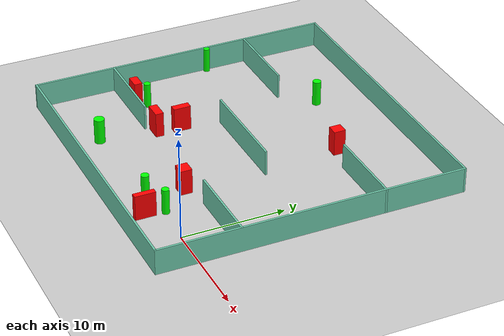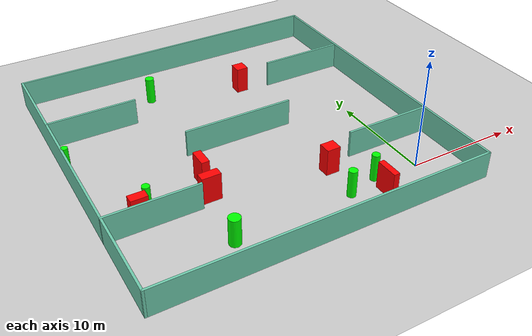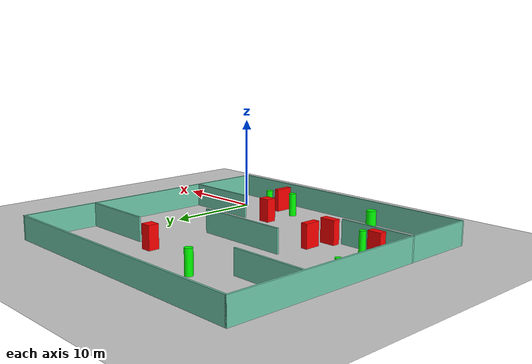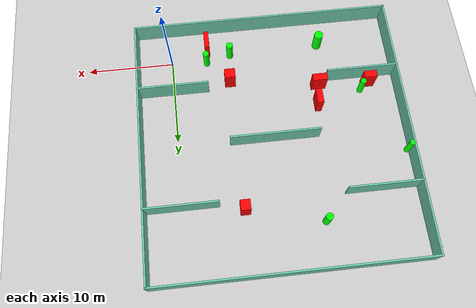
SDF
<sdf version="1.7">
 <world name="default">
  <light name="sun" type="directional">
   <pose>0 0 10 0 -0 0</pose>
   <diffuse>0.8 0.8 0.8 1</diffuse>
   <specular>0.2 0.2 0.2 1</specular>
   <attenuation>
    <range>1000</range>
    <constant>0.9</constant>
    <linear>0.01</linear>
    <quadratic>0.001</quadratic>
   </attenuation>
   <direction>-0.5 0.1 -0.9</direction>
   <spot><inner_angle>0</inner_angle><outer_angle>0</outer_angle><falloff>0</falloff></spot>
  </light>
  <model name="ground_plane">
   <static>1</static>
   <link name="link">
    <collision name="collision">
     <geometry><plane><normal>0 0 1</normal><size>100 100</size></plane></geometry>
     <surface>
      <contact><collide_bitmask>65535</collide_bitmask></contact>
      <friction><ode><mu>100</mu><mu2>50</mu2></ode></friction>
     </surface>
    </collision>
    <visual name="visual">
     <cast_shadows>0</cast_shadows>
     <geometry><plane><normal>0 0 1</normal><size>100 100</size></plane></geometry>
     <material>
      <script><uri>file://media/materials/scripts/gazebo.material</uri><name>Gazebo/Grey</name></script>
     </material>
    </visual>
   </link>
  </model>
  <gravity>0 0 -9.8</gravity>
  <magnetic_field>6e-06 2.3e-05 -4.2e-05</magnetic_field>
  <atmosphere type="adiabatic"/>
  <physics type="ode">
   <max_step_size>0.001</max_step_size>
   <real_time_factor>1</real_time_factor>
   <real_time_update_rate>1000</real_time_update_rate>
  </physics>
  <scene><ambient>0.4 0.4 0.4 1</ambient><background>0.7 0.7 0.7 1</background><shadows>1</shadows></scene>
  <spherical_coordinates>
   <surface_model>EARTH_WGS84</surface_model>
   <latitude_deg>0</latitude_deg>
   <longitude_deg>0</longitude_deg>
   <elevation>0</elevation>
   <heading_deg>0</heading_deg>
  </spherical_coordinates>
  <model name="my_base_walls">
   <link name="Wall_10">
    <collision name="Wall_10_Collision">
     <geometry><box><size>8.2 0.2 2.5</size></box></geometry>
     <pose>0 0 1.25 0 -0 0</pose>
    </collision>
    <visual name="Wall_10_Visual">
     <pose>0 0 1.25 0 -0 0</pose>
     <geometry><box><size>8.2 0.2 2.5</size></box></geometry>
     <material>
      <script><uri>file://media/materials/scripts/gazebo.material</uri><name>Gazebo/Grey</name></script>
      <ambient>0.435294 0.796078 0.67451 1</ambient>
     </material>
     <meta><layer>0</layer></meta>
    </visual>
    <pose>-11 -7 0 0 -0 0</pose>
   </link>
   <link name="Wall_12">
    <collision name="Wall_12_Collision">
     <geometry><box><size>8.2 0.2 2.5</size></box></geometry>
     <pose>0 0 1.25 0 -0 0</pose>
    </collision>
    <visual name="Wall_12_Visual">
     <pose>0 0 1.25 0 -0 0</pose>
     <geometry><box><size>8.2 0.2 2.5</size></box></geometry>
     <material>
      <script><uri>file://media/materials/scripts/gazebo.material</uri><name>Gazebo/Grey</name></script>
      <ambient>0.435294 0.796078 0.67451 1</ambient>
     </material>
     <meta><layer>0</layer></meta>
    </visual>
    <pose>-11 7 0 0 -0 0</pose>
   </link>
   <link name="Wall_14">
    <collision name="Wall_14_Collision">
     <geometry><box><size>8.2 0.2 2.5</size></box></geometry>
     <pose>0 0 1.25 0 -0 0</pose>
    </collision>
    <visual name="Wall_14_Visual">
     <pose>0 0 1.25 0 -0 0</pose>
     <geometry><box><size>8.2 0.2 2.5</size></box></geometry>
     <material>
      <script><uri>file://media/materials/scripts/gazebo.material</uri><name>Gazebo/Grey</name></script>
      <ambient>0.435294 0.796078 0.67451 1</ambient>
     </material>
     <meta><layer>0</layer></meta>
    </visual>
    <pose>11 7 0 0 -0 3.14159</pose>
   </link>
   <link name="Wall_16">
    <collision name="Wall_16_Collision">
     <geometry><box><size>10.2 0.2 2.5</size></box></geometry>
     <pose>0 0 1.25 0 -0 0</pose>
    </collision>
    <visual name="Wall_16_Visual">
     <pose>0 0 1.25 0 -0 0</pose>
     <geometry><box><size>10.2 0.2 2.5</size></box></geometry>
     <material>
      <script><uri>file://media/materials/scripts/gazebo.material</uri><name>Gazebo/Grey</name></script>
      <ambient>0.435294 0.796078 0.67451 1</ambient>
     </material>
     <meta><layer>0</layer></meta>
    </visual>
    <pose>0 0 0 0 -0 3.14159</pose>
   </link>
   <link name="Wall_2">
    <collision name="Wall_2_Collision">
     <geometry><box><size>30.2 0.2 2.5</size></box></geometry>
     <pose>0 0 1.25 0 -0 0</pose>
    </collision>
    <visual name="Wall_2_Visual">
     <pose>0 0 1.25 0 -0 0</pose>
     <geometry><box><size>30.2 0.2 2.5</size></box></geometry>
     <material>
      <script><uri>file://media/materials/scripts/gazebo.material</uri><name>Gazebo/Grey</name></script>
      <ambient>0.435294 0.796078 0.67451 1</ambient>
     </material>
     <meta><layer>0</layer></meta>
    </visual>
    <pose>0 -15 0 0 -0 3.14159</pose>
   </link>
   <link name="Wall_3">
    <collision name="Wall_3_Collision">
     <geometry><box><size>30.2 0.2 2.5</size></box></geometry>
     <pose>0 0 1.25 0 -0 0</pose>
    </collision>
    <visual name="Wall_3_Visual">
     <pose>0 0 1.25 0 -0 0</pose>
     <geometry><box><size>30.2 0.2 2.5</size></box></geometry>
     <material>
      <script><uri>file://media/materials/scripts/gazebo.material</uri><name>Gazebo/Grey</name></script>
      <ambient>0.435294 0.796078 0.67451 1</ambient>
     </material>
     <meta><layer>0</layer></meta>
    </visual>
    <pose>-15 0 0 0 -0 1.5708</pose>
   </link>
   <link name="Wall_4">
    <collision name="Wall_4_Collision">
     <geometry><box><size>30.2 0.2 2.5</size></box></geometry>
     <pose>0 0 1.25 0 -0 0</pose>
    </collision>
    <visual name="Wall_4_Visual">
     <pose>0 0 1.25 0 -0 0</pose>
     <geometry><box><size>30.2 0.2 2.5</size></box></geometry>
     <material>
      <script><uri>file://media/materials/scripts/gazebo.material</uri><name>Gazebo/Grey</name></script>
      <ambient>0.435294 0.796078 0.67451 1</ambient>
     </material>
     <meta><layer>0</layer></meta>
    </visual>
    <pose>0 15 0 0 -0 0</pose>
   </link>
   <link name="Wall_6">
    <collision name="Wall_6_Collision">
     <geometry><box><size>30.2 0.2 2.5</size></box></geometry>
     <pose>0 0 1.25 0 -0 0</pose>
    </collision>
    <visual name="Wall_6_Visual">
     <pose>0 0 1.25 0 -0 0</pose>
     <geometry><box><size>30.2 0.2 2.5</size></box></geometry>
     <material>
      <script><uri>file://media/materials/scripts/gazebo.material</uri><name>Gazebo/Grey</name></script>
      <ambient>0.435294 0.796078 0.67451 1</ambient>
     </material>
     <meta><layer>0</layer></meta>
    </visual>
    <pose>15 0 0 0 -0 1.5708</pose>
   </link>
   <link name="Wall_8">
    <collision name="Wall_8_Collision">
     <geometry><box><size>8.2 0.2 2.5</size></box></geometry>
     <pose>0 0 1.25 0 -0 0</pose>
    </collision>
    <visual name="Wall_8_Visual">
     <pose>0 0 1.25 0 -0 0</pose>
     <geometry><box><size>8.2 0.2 2.5</size></box></geometry>
     <material>
      <script><uri>file://media/materials/scripts/gazebo.material</uri><name>Gazebo/Grey</name></script>
      <ambient>0.435294 0.796078 0.67451 1</ambient>
     </material>
     <meta><layer>0</layer></meta>
    </visual>
    <pose>11 -7 0 0 -0 3.14159</pose>
   </link>
   <static>1</static>
   <pose>-11 11 0 0 -0 0</pose>
  </model>
  <model name="cylinder1">
   <static>1</static>
   <link name="link">
    <inertial>
     <mass>1</mass>
     <inertia><ixx>0.5</ixx><ixy>0</ixy><ixz>0</ixz><iyy>0.5</iyy><iyz>0</iyz><izz>1</izz></inertia>
    </inertial>
    <collision name="collision">
     <geometry><cylinder><radius>0.3358565357784995</radius><length>2.5</length></cylinder></geometry>
    </collision>
    <visual name="visual">
     <geometry><cylinder><radius>0.3358565357784995</radius><length>2.5</length></cylinder></geometry>
     <material>
      <ambient>0 1 0 1</ambient>
      <diffuse>0 1 0 1</diffuse>
      <specular>0.1 0.1 0.1 1</specular>
      <emissive>0 0 0 0</emissive>
     </material>
    </visual>
   </link>
   <pose>-21.80691748992758 5.7964817984495305 1.25 0 0 0</pose>
  </model>
  <model name="cylinder2">
   <static>1</static>
   <link name="link">
    <inertial>
     <mass>1</mass>
     <inertia><ixx>0.5</ixx><ixy>0</ixy><ixz>0</ixz><iyy>0.5</iyy><iyz>0</iyz><izz>1</izz></inertia>
    </inertial>
    <collision name="collision">
     <geometry><cylinder><radius>0.403477995536143</radius><length>2.5</length></cylinder></geometry>
    </collision>
    <visual name="visual">
     <geometry><cylinder><radius>0.403477995536143</radius><length>2.5</length></cylinder></geometry>
     <material>
      <ambient>0 1 0 1</ambient>
      <diffuse>0 1 0 1</diffuse>
      <specular>0.1 0.1 0.1 1</specular>
      <emissive>0 0 0 0</emissive>
     </material>
    </visual>
   </link>
   <pose>-15.333901895439084 20.886415368617136 1.25 0 0 0</pose>
  </model>
  <model name="cylinder3">
   <static>1</static>
   <link name="link">
    <inertial>
     <mass>1</mass>
     <inertia><ixx>0.5</ixx><ixy>0</ixy><ixz>0</ixz><iyy>0.5</iyy><iyz>0</iyz><izz>1</izz></inertia>
    </inertial>
    <collision name="collision">
     <geometry><cylinder><radius>0.30363883963805965</radius><length>2.5</length></cylinder></geometry>
    </collision>
    <visual name="visual">
     <geometry><cylinder><radius>0.30363883963805965</radius><length>2.5</length></cylinder></geometry>
     <material>
      <ambient>0 1 0 1</ambient>
      <diffuse>0 1 0 1</diffuse>
      <specular>0.1 0.1 0.1 1</specular>
      <emissive>0 0 0 0</emissive>
     </material>
    </visual>
   </link>
   <pose>-25.711592645437545 13.772670286984841 1.25 0 0 0</pose>
  </model>
  <model name="cylinder4">
   <static>1</static>
   <link name="link">
    <inertial>
     <mass>1</mass>
     <inertia><ixx>0.5</ixx><ixy>0</ixy><ixz>0</ixz><iyy>0.5</iyy><iyz>0</iyz><izz>1</izz></inertia>
    </inertial>
    <collision name="collision">
     <geometry><cylinder><radius>0.35843455348875697</radius><length>2.5</length></cylinder></geometry>
    </collision>
    <visual name="visual">
     <geometry><cylinder><radius>0.35843455348875697</radius><length>2.5</length></cylinder></geometry>
     <material>
      <ambient>0 1 0 1</ambient>
      <diffuse>0 1 0 1</diffuse>
      <specular>0.1 0.1 0.1 1</specular>
      <emissive>0 0 0 0</emissive>
     </material>
    </visual>
   </link>
   <pose>-4.131141542175648 0.32429718948442865 1.25 0 0 0</pose>
  </model>
  <model name="cylinder5">
   <static>1</static>
   <link name="link">
    <inertial>
     <mass>1</mass>
     <inertia><ixx>0.5</ixx><ixy>0</ixy><ixz>0</ixz><iyy>0.5</iyy><iyz>0</iyz><izz>1</izz></inertia>
    </inertial>
    <collision name="collision">
     <geometry><cylinder><radius>0.5114375375676494</radius><length>2.5</length></cylinder></geometry>
    </collision>
    <visual name="visual">
     <geometry><cylinder><radius>0.5114375375676494</radius><length>2.5</length></cylinder></geometry>
     <material>
      <ambient>0 1 0 1</ambient>
      <diffuse>0 1 0 1</diffuse>
      <specular>0.1 0.1 0.1 1</specular>
      <emissive>0 0 0 0</emissive>
     </material>
    </visual>
   </link>
   <pose>-17.638845299023302 -0.7527853134919313 1.25 0 0 0</pose>
  </model>
  <model name="cylinder6">
   <static>1</static>
   <link name="link">
    <inertial>
     <mass>1</mass>
     <inertia><ixx>0.5</ixx><ixy>0</ixy><ixz>0</ixz><iyy>0.5</iyy><iyz>0</iyz><izz>1</izz></inertia>
    </inertial>
    <collision name="collision">
     <geometry><cylinder><radius>0.38681367219192886</radius><length>2.5</length></cylinder></geometry>
    </collision>
    <visual name="visual">
     <geometry><cylinder><radius>0.38681367219192886</radius><length>2.5</length></cylinder></geometry>
     <material>
      <ambient>0 1 0 1</ambient>
      <diffuse>0 1 0 1</diffuse>
      <specular>0.1 0.1 0.1 1</specular>
      <emissive>0 0 0 0</emissive>
     </material>
    </visual>
   </link>
   <pose>-6.967180757091754 -0.465785282422682 1.25 0 0 0</pose>
  </model>
  <model name="box1">
   <static>1</static>
   <link name="link">
    <inertial>
     <mass>1</mass>
     <inertia><ixx>0.083</ixx><ixy>0</ixy><ixz>0</ixz><iyy>0.083</iyy><iyz>0</iyz><izz>0.083</izz></inertia>
    </inertial>
    <collision name="collision">
     <geometry><box><size>1.1139501860983367 1.1563090226848345 2.5</size></box></geometry>
    </collision>
    <visual name="visual">
     <geometry><box><size>1.1139501860983367 1.1563090226848345 2.5</size></box></geometry>
     <material>
      <ambient>1 0 0 1</ambient>
      <diffuse>1 0 0 1</diffuse>
      <specular>0.1 0.1 0.1 1</specular>
      <emissive>0 0 0 0</emissive>
     </material>
    </visual>
    <sensor name="my_contact" type="contact">
     <contact><collision>box_collision</collision><topic>__default_topic__</topic></contact>
    </sensor>
   </link>
   <pose>-6.7801850166886 18.707806515795063 1.25 0 0 0</pose>
  </model>
  <model name="box2">
   <static>1</static>
   <link name="link">
    <inertial>
     <mass>1</mass>
     <inertia><ixx>0.083</ixx><ixy>0</ixy><ixz>0</ixz><iyy>0.083</iyy><iyz>0</iyz><izz>0.083</izz></inertia>
    </inertial>
    <collision name="collision">
     <geometry><box><size>0.7138496160653476 1.698959931322066 2.5</size></box></geometry>
    </collision>
    <visual name="visual">
     <geometry><box><size>0.7138496160653476 1.698959931322066 2.5</size></box></geometry>
     <material>
      <ambient>1 0 0 1</ambient>
      <diffuse>1 0 0 1</diffuse>
      <specular>0.1 0.1 0.1 1</specular>
      <emissive>0 0 0 0</emissive>
     </material>
    </visual>
    <sensor name="my_contact" type="contact">
     <contact><collision>box_collision</collision><topic>__default_topic__</topic></contact>
    </sensor>
   </link>
   <pose>-16.531674584504245 7.098235098585393 1.25 0 0 0</pose>
  </model>
  <model name="box3">
   <static>1</static>
   <link name="link">
    <inertial>
     <mass>1</mass>
     <inertia><ixx>0.083</ixx><ixy>0</ixy><ixz>0</ixz><iyy>0.083</iyy><iyz>0</iyz><izz>0.083</izz></inertia>
    </inertial>
    <collision name="collision">
     <geometry><box><size>1.2468090269243368 1.1207463213161102 2.5</size></box></geometry>
    </collision>
    <visual name="visual">
     <geometry><box><size>1.2468090269243368 1.1207463213161102 2.5</size></box></geometry>
     <material>
      <ambient>1 0 0 1</ambient>
      <diffuse>1 0 0 1</diffuse>
      <specular>0.1 0.1 0.1 1</specular>
      <emissive>0 0 0 0</emissive>
     </material>
    </visual>
    <sensor name="my_contact" type="contact">
     <contact><collision>box_collision</collision><topic>__default_topic__</topic></contact>
    </sensor>
   </link>
   <pose>-6.659772905834295 3.1702561119008292 1.25 0 0 0</pose>
  </model>
  <model name="box4">
   <static>1</static>
   <link name="link">
    <inertial>
     <mass>1</mass>
     <inertia><ixx>0.083</ixx><ixy>0</ixy><ixz>0</ixz><iyy>0.083</iyy><iyz>0</iyz><izz>0.083</izz></inertia>
    </inertial>
    <collision name="collision">
     <geometry><box><size>1.694023331917161 0.807208521162406 2.5</size></box></geometry>
    </collision>
    <visual name="visual">
     <geometry><box><size>1.694023331917161 0.807208521162406 2.5</size></box></geometry>
     <material>
      <ambient>1 0 0 1</ambient>
      <diffuse>1 0 0 1</diffuse>
      <specular>0.1 0.1 0.1 1</specular>
      <emissive>0 0 0 0</emissive>
     </material>
    </visual>
    <sensor name="my_contact" type="contact">
     <contact><collision>box_collision</collision><topic>__default_topic__</topic></contact>
    </sensor>
   </link>
   <pose>-16.941210876493766 4.733423476656163 1.25 0 0 0</pose>
  </model>
  <model name="box5">
   <static>1</static>
   <link name="link">
    <inertial>
     <mass>1</mass>
     <inertia><ixx>0.083</ixx><ixy>0</ixy><ixz>0</ixz><iyy>0.083</iyy><iyz>0</iyz><izz>0.083</izz></inertia>
    </inertial>
    <collision name="collision">
     <geometry><box><size>0.5469461224066439 2.023827995874443 2.5</size></box></geometry>
    </collision>
    <visual name="visual">
     <geometry><box><size>0.5469461224066439 2.023827995874443 2.5</size></box></geometry>
     <material>
      <ambient>1 0 0 1</ambient>
      <diffuse>1 0 0 1</diffuse>
      <specular>0.1 0.1 0.1 1</specular>
      <emissive>0 0 0 0</emissive>
     </material>
    </visual>
    <sensor name="my_contact" type="contact">
     <contact><collision>box_collision</collision><topic>__default_topic__</topic></contact>
    </sensor>
   </link>
   <pose>-4.3259832454518765 -1.5977038943380948 1.25 0 0 0</pose>
  </model>
  <model name="box6">
   <static>1</static>
   <link name="link">
    <inertial>
     <mass>1</mass>
     <inertia><ixx>0.083</ixx><ixy>0</ixy><ixz>0</ixz><iyy>0.083</iyy><iyz>0</iyz><izz>0.083</izz></inertia>
    </inertial>
    <collision name="collision">
     <geometry><box><size>1.4510419518197724 0.8081821560061606 2.5</size></box></geometry>
    </collision>
    <visual name="visual">
     <geometry><box><size>1.4510419518197724 0.8081821560061606 2.5</size></box></geometry>
     <material>
      <ambient>1 0 0 1</ambient>
      <diffuse>1 0 0 1</diffuse>
      <specular>0.1 0.1 0.1 1</specular>
      <emissive>0 0 0 0</emissive>
     </material>
    </visual>
    <sensor name="my_contact" type="contact">
     <contact><collision>box_collision</collision><topic>__default_topic__</topic></contact>
    </sensor>
   </link>
   <pose>-22.78125680785095 4.994942871641381 1.25 0 0 0</pose>
  </model>
 </world>
</sdf>
